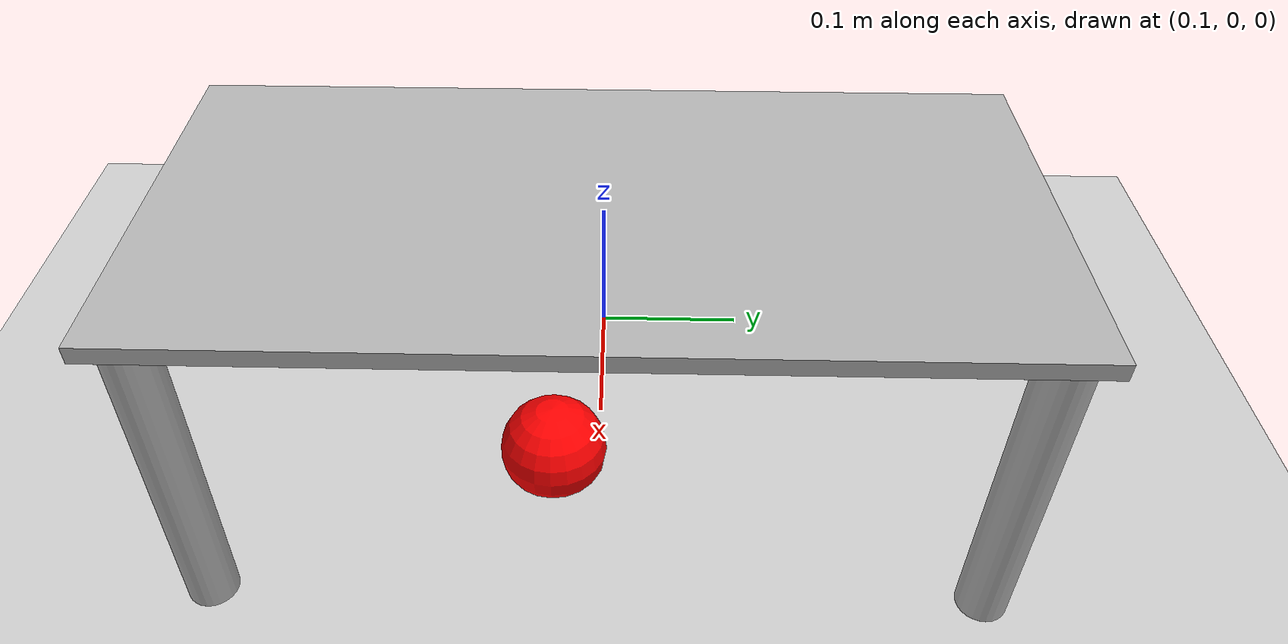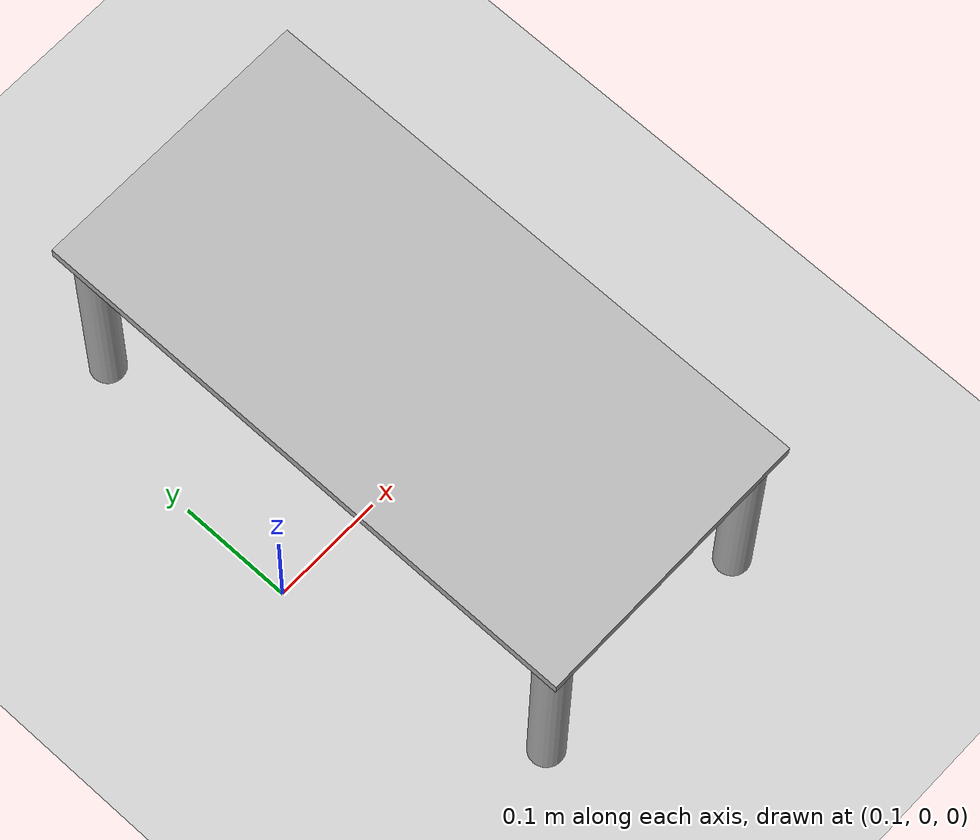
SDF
<sdf version="1.6">
 <world name="default">
  <scene><shadows>0</shadows></scene>
  <light name="sun" type="directional">
   <cast_shadows>0</cast_shadows>
   <pose>0 0 5 0 -0 0</pose>
   <diffuse>0.8 0.8 0.8 1</diffuse>
   <specular>0.1 0.1 0.1 1</specular>
   <attenuation>
    <range>1000</range>
    <constant>0.9</constant>
    <linear>0.01</linear>
    <quadratic>0.001</quadratic>
   </attenuation>
   <direction>-0.5 0.5 -1</direction>
  </light>
  <physics type="ode">
   <max_step_size>0.001</max_step_size>
   <real_time_factor>1</real_time_factor>
   <real_time_update_rate>1000</real_time_update_rate>
   <gravity>0 0 -9.8</gravity>
  </physics>
  <include><uri>model://ground_plane</uri></include>
  <include><pose>0.25 0 0  0 0 0</pose><uri>model://ra_table</uri></include>
  <include><pose>0.25 -0.03 0.015  0 0 0</pose><uri>model://ra_ball_large_rgb</uri></include>
 </world>
</sdf>

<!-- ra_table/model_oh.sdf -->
<sdf version="1.5">
  <model name="ra_table">
    <static>True</static>
    <link name="link">
      <collision name="plate">
        <pose>0 0 0.11  0 0 0</pose>
        <geometry>
          <box> <size> 0.25 0.50 0.01 </size> </box>
        </geometry>
      </collision>
      <collision name="leg0">
        <pose>0.105 0.23 0.05  0 0 0</pose>
        <geometry>
          <cylinder>
            <radius>0.015</radius>
            <length>0.1</length>
          </cylinder>
        </geometry>
      </collision>
      <collision name="leg1">
        <pose>-0.105 0.23 0.05  0 0 0</pose>
        <geometry>
          <cylinder>
            <radius>0.015</radius>
            <length>0.1</length>
          </cylinder>
        </geometry>
      </collision>
      <collision name="leg2">
        <pose>0.105 -0.23 0.05  0 0 0</pose>
        <geometry>
          <cylinder>
            <radius>0.015</radius>
            <length>0.1</length>
          </cylinder>
        </geometry>
      </collision>
      <collision name="leg3">
        <pose>-0.105 -0.23 0.05  0 0 0</pose>
        <geometry>
          <cylinder>
            <radius>0.015</radius>
            <length>0.1</length>
          </cylinder>
        </geometry>
      </collision>
      <visual name="plate">
        <pose>0 0 0.205  0 0 0</pose>
        <geometry>
          <box> <size> 0.25 0.50 0.01 </size> </box>
        </geometry>
        <material>
          <ambient>.55 .55 .6 1</ambient>
          <diffuse>.7 .7 .7 1</diffuse>
          <specular>0.1 0.1 0.1 1</specular>
        </material>
      </visual>
      <visual name="leg0">
        <pose>0.105 0.23 0.1  0 0 0</pose>
        <geometry>
          <cylinder>
            <radius>0.015</radius>
            <length>0.2</length>
          </cylinder>
        </geometry>
        <material>
          <ambient>.55 .55 .6 1</ambient>
          <diffuse>.7 .7 .7 1</diffuse>
          <specular>0.1 0.1 0.1 1</specular>
        </material>
      </visual>
      <visual name="leg1">
        <pose>-0.105 0.23 0.1  0 0 0</pose>
        <geometry>
          <cylinder>
            <radius>0.015</radius>
            <length>0.2</length>
          </cylinder>
        </geometry>
        <material>
          <ambient>.55 .55 .6 1</ambient>
          <diffuse>.7 .7 .7 1</diffuse>
          <specular>0.1 0.1 0.1 1</specular>
        </material>
      </visual>
      <visual name="leg2">
        <pose>0.105 -0.23 0.1  0 0 0</pose>
        <geometry>
          <cylinder>
            <radius>0.015</radius>
            <length>0.2</length>
          </cylinder>
        </geometry>
        <material>
          <ambient>.55 .55 .6 1</ambient>
          <diffuse>.7 .7 .7 1</diffuse>
          <specular>0.1 0.1 0.1 1</specular>
        </material>
      </visual>
      <visual name="leg3">
        <pose>-0.105 -0.23 0.1  0 0 0</pose>
        <geometry>
          <cylinder>
            <radius>0.015</radius>
            <length>0.2</length>
          </cylinder>
        </geometry>
        <material>
          <ambient>.55 .55 .6 1</ambient>
          <diffuse>.7 .7 .7 1</diffuse>
          <specular>0.1 0.1 0.1 1</specular>
        </material>
      </visual>
    </link>
  </model>
</sdf>

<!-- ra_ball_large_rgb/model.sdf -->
<!-- large dia 0.070 / 130g -->
<!-- small dia 0.045 / 130g -->
<sdf version="1.5">
  <model name="ra_ball_large">
    <static>false</static>
    <link name="link">
      <inertial>
        <mass>0.15</mass>
        <pose> 0 0 0   0 0 0</pose>
        <inertia>
          <ixx>3.06e-05</ixx>
          <iyy>3.06e-05</iyy>
          <izz>3.06e-05</izz>
          <ixy>0</ixy>
          <ixz>0</ixz>
          <iyz>0</iyz>
        </inertia>
      </inertial>
      <collision name="collision">
        <geometry>
          <sphere>
            <radius>0.035</radius>
          </sphere>
        </geometry>
      </collision>
      <visual name="visual">
        <geometry>
          <sphere>
            <radius>0.035</radius>
          </sphere>
        </geometry>
        <material>
          <ambient>1 0 0 1</ambient>
          <diffuse>1 0 0 1</diffuse>
          <specular>0.1 0.1 0.1 1</specular>
        </material>
      </visual>
    </link>
  </model>
</sdf>
